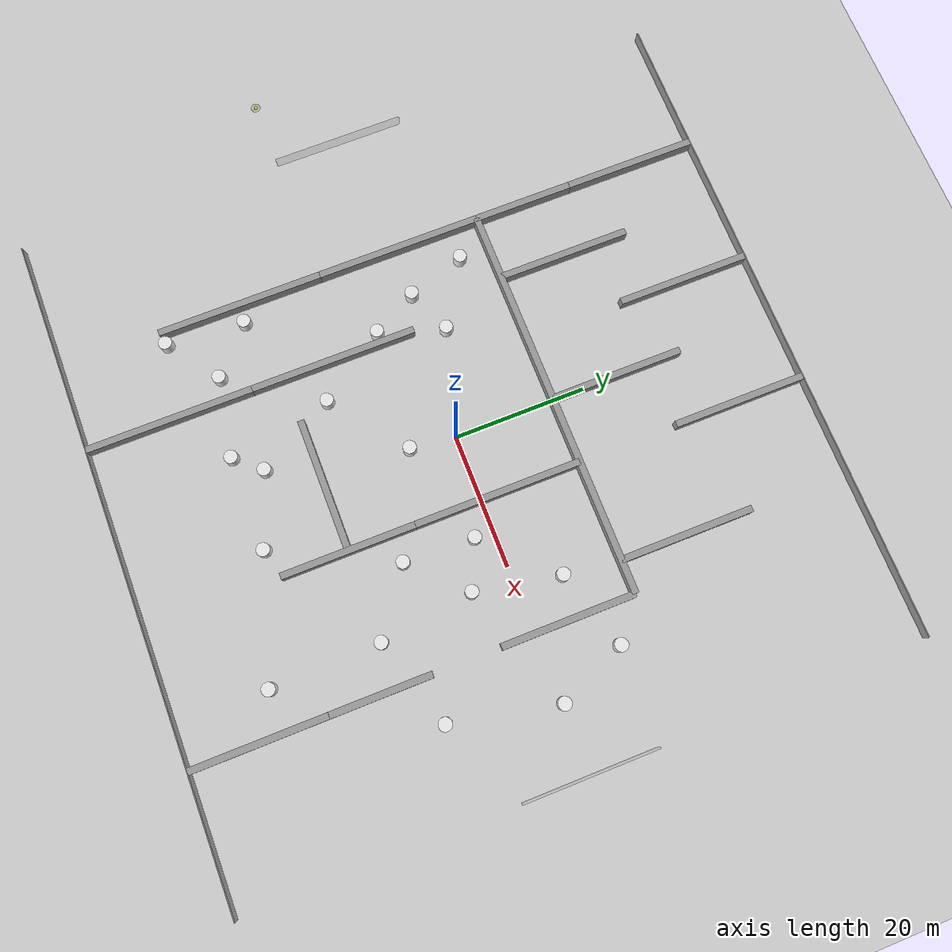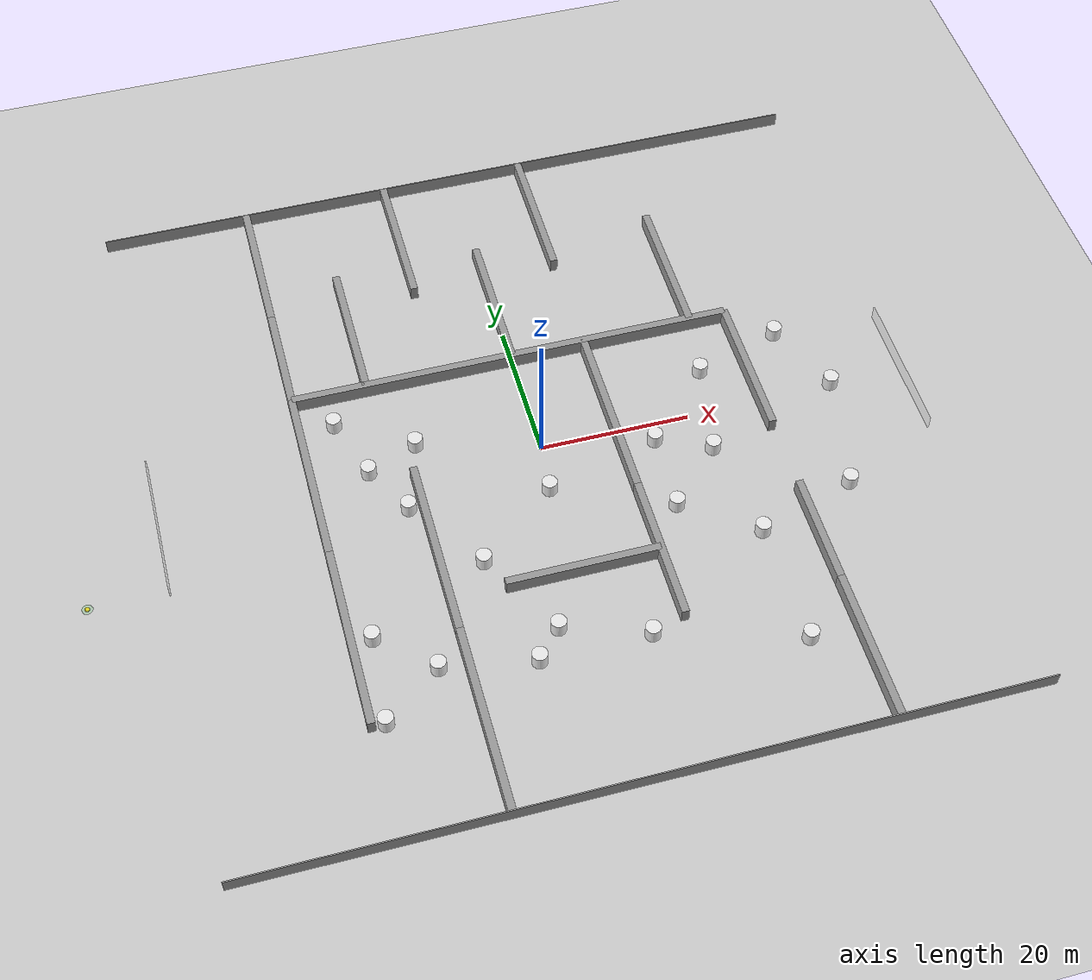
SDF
<?xml version="1.0" ?>
<sdf version="1.5">
  <world name="default">
   <light type="directional" name="sun">
      <cast_shadows>false</cast_shadows>
      <pose>0 0 100 0 0 0</pose>
      <diffuse>0.8 0.8 0.8 1</diffuse>
      <specular>0.9 0.9 0.9 1</specular>
      <attenuation>
        <range>1000</range>
        <constant>0.9</constant>
        <linear>0.01</linear>
        <quadratic>0.001</quadratic>
      </attenuation>
      <direction>0.2 0.2 -0.9</direction>
    </light>

    <!-- A ground plane -->
    <include>
      <uri>model://ground_plane</uri>
    </include>

    <!-- 初始视角 -->
    <gui fullscreen='0'>
      <camera name='user_camera'>
        <pose>-13.0 0.0 12.0 0 0.75 0.0</pose>
        <view_controller>orbit</view_controller>
      </camera>
    </gui>

    <!-- 地面 -->
    <physics type='ode'>
      <gravity>0 0 -9.8066</gravity>
      <ode>
        <solver>
          <type>quick</type>
          <iters>150</iters>
          <sor>1.3</sor>
          <use_dynamic_moi_rescaling>0</use_dynamic_moi_rescaling>
        </solver>
        <constraints>
          <cfm>0.00001</cfm>
          <erp>0.2</erp>
          <contact_max_correcting_vel>1000</contact_max_correcting_vel>
          <contact_surface_layer>0.01</contact_surface_layer>
        </constraints>
      </ode>
      <max_step_size>0.004</max_step_size>
      <real_time_factor>1000.0</real_time_factor>
      <real_time_update_rate>250</real_time_update_rate>
      <magnetic_field>6.0e-6 2.3e-5 -4.2e-5</magnetic_field>
    </physics>

    <model name='start_point'>
      <pose> -60 -10 1 0 0 0 </pose>
      <include>
        <uri>model://start_sphere</uri>
      </include>
    </model>
    <model name='goal_point'>
      <pose> -60 -10 1 0 0 0 </pose>
      <include>
        <uri>model://goal_sphere</uri>
      </include>
    </model>

    <model name='waypoint0'>
      <pose> -60 -10 1 0 0 0 </pose>
      <include>
        <uri>model://waypoint</uri>
      </include>
    </model>
   <model name='waypoint1'>
      <pose> -60 -10 1 0 0 0 </pose>
      <include>
        <uri>model://waypoint</uri>
      </include>
    </model>
    <model name='waypoint2'>
      <pose> -60 -10 1 0 0 0 </pose>
      <include>
        <uri>model://waypoint</uri>
      </include>
    </model>
    <model name='waypoint3'>
      <pose> -60 -10 1 0 0 0 </pose>
      <include>
        <uri>model://waypoint</uri>
      </include>
    </model>
    <model name='waypoint4'>
      <pose> -60 -10 1 0 0 0 </pose>
      <include>
        <uri>model://waypoint</uri>
      </include>
    </model>
    <model name='waypoint5'>
      <pose> -60 -10 1 0 0 0 </pose>
      <include>
        <uri>model://waypoint</uri>
      </include>
    </model>
    <model name='waypoint6'>
      <pose> -60 -10 1 0 0 0 </pose>
      <include>
        <uri>model://waypoint</uri>
      </include>
    </model>
    <model name='waypoint7'>
      <pose> -60 -10 1 0 0 0 </pose>
      <include>
        <uri>model://waypoint</uri>
      </include>
    </model>
    <model name='waypoint8'>
      <pose> -60 -10 1 0 0 0 </pose>
      <include>
        <uri>model://waypoint</uri>
      </include>
    </model>
    <model name='waypoint9'>
      <pose> -60 -10 1 0 0 0 </pose>
      <include>
        <uri>model://waypoint</uri>
      </include>
    </model>
    <model name='waypoint10'>
      <pose> -60 -10 1 0 0 0 </pose>
      <include>
        <uri>model://waypoint</uri>
      </include>
    </model>
    <model name='waypoint11'>
      <pose> -60 -10 1 0 0 0 </pose>
      <include>
        <uri>model://waypoint</uri>
      </include>
    </model>
    <model name='waypoint12'>
      <pose> -60 -10 1 0 0 0 </pose>
      <include>
        <uri>model://waypoint</uri>
      </include>
    </model>
    <model name='waypoint13'>
      <pose> -60 -10 1 0 0 0 </pose>
      <include>
        <uri>model://waypoint</uri>
      </include>
    </model>
    <model name='waypoint14'>
      <pose> -60 -10 1 0 0 0 </pose>
      <include>
        <uri>model://waypoint</uri>
      </include>
    </model>
    <model name='waypoint15'>
      <pose> -60 -10 1 0 0 0 </pose>
      <include>
        <uri>model://waypoint</uri>
      </include>
    </model>
    <model name='waypoint16'>
      <pose> -60 -10 1 0 0 0 </pose>
      <include>
        <uri>model://waypoint</uri>
      </include>
    </model>
    <model name='waypoint17'>
      <pose> -60 -10 1 0 0 0 </pose>
      <include>
        <uri>model://waypoint</uri>
      </include>
    </model>
    <model name='waypoint18'>
      <pose> -60 -10 1 0 0 0 </pose>
      <include>
        <uri>model://waypoint</uri>
      </include>
    </model>
    <model name='waypoint19'>
      <pose> -60 -10 1 0 0 0 </pose>
      <include>
        <uri>model://waypoint</uri>
      </include>
    </model>
    <model name='waypoint20'>
      <pose> -60 -10 1 0 0 0 </pose>
      <include>
        <uri>model://waypoint</uri>
      </include>
    </model>

    <model name='wall1'>
      <pose> 0 -50 1 0 0 0 </pose>
      <include>
        <uri>model://env2/obs_wall</uri>
      </include>
    </model>
    <model name='wall2'>
      <pose> 0 50 1 0 0 0 </pose>
      <include>
        <uri>model://env2/obs_wall</uri>
      </include>
    </model>
    <model name='wall3'>
      <pose> -50 0 1 0 0 0 </pose>
      <include>
        <uri>model://env2/obs_wall_x</uri>
      </include>
    </model>
    <model name='wall4'>
      <pose> 50 0 1 0 0 0 </pose>
      <include>
        <uri>model://env2/obs_wall_x</uri>
      </include>
    </model>

    <model name='wall5'>
      <pose> -30 -22.5 1 0 0 0 </pose>
      <include>
        <uri>model://env2/obs_wall_h_25m</uri>
      </include>
    </model>
    <model name='wall6'>
      <pose> -30 2.5 1 0 0 0 </pose>
      <include>
        <uri>model://env2/obs_wall_h_25m</uri>
      </include>
    </model>
    <model name='wall7'>
      <pose> -17 -37.5 1 0 0 0 </pose>
      <include>
        <uri>model://env2/obs_wall_h_25m</uri>
      </include>
    </model>
    <model name='wall8'>
      <pose> -17 -12.5 1 0 0 0 </pose>
      <include>
        <uri>model://env2/obs_wall_h_25m</uri>
      </include>
    </model>
    <model name='wall9'>
      <pose> -10 40 1 0 0 0 </pose>
      <include>
        <uri>model://env2/obs_wall_h_20m</uri>
      </include>
    </model>
    <model name='wall10'>
      <pose> -20 25 1 0 0 0 </pose>
      <include>
        <uri>model://env2/obs_wall_h_20m</uri>
      </include>
    </model>
    <model name='wall10-1'>
      <pose> 0 25 1 0 0 0 </pose>
      <include>
        <uri>model://env2/obs_wall_h_20m</uri>
      </include>
    </model>
    <model name='wall10-2'>
      <pose> -30 40 1 0 0 0 </pose>
      <include>
        <uri>model://env2/obs_wall_h_20m</uri>
      </include>
    </model>
    <model name='wall10-3'>
      <pose> 10 40 1 0 0 0 </pose>
      <include>
        <uri>model://env2/obs_wall_h_20m</uri>
      </include>
    </model>
    <model name='wall10-4'>
      <pose> -30 22.5 1 0 0 0 </pose>
      <include>
        <uri>model://env2/obs_wall_h_15m</uri>
      </include>
    </model>
    <model name='wall11'>
      <pose> 10 -20 1 0 0 0 </pose>
      <include>
        <uri>model://env2/obs_wall_h_20m</uri>
      </include>
    </model>
    <model name='wall12'>
      <pose> 10 2.5 1 0 0 0 </pose>
      <include>
        <uri>model://env2/obs_wall_h_25m</uri>
      </include>
    </model>
    <model name='wall13'>
      <pose> 30 -22.5 1 0 0 0 </pose>
      <include>
        <uri>model://env2/obs_wall_h_15m</uri>
      </include>
    </model>
    <model name='wall14'>
      <pose> 30 -40 1 0 0 0 </pose>
      <include>
        <uri>model://env2/obs_wall_h_20m</uri>
      </include>
    </model>
    <model name='wall15'>
      <pose> 30 5 1 0 0 0 </pose>
      <include>
        <uri>model://env2/obs_wall_h_20m</uri>
      </include>
    </model>
    <model name='wall16'>
      <pose> 25 25 1 0 0 0 </pose>
      <include>
        <uri>model://env2/obs_wall_h_20m</uri>
      </include>
    </model>
    <model name='wall17'>
      <pose> 0 -20 1 0 0 0 </pose>
      <include>
        <uri>model://env2/obs_wall_s_20m</uri>
      </include>
    </model>
    <model name='wall18'>
      <pose> 0 15 1 0 0 0 </pose>
      <include>
        <uri>model://env2/obs_wall_s_60m</uri>
      </include>
    </model>
    <model name='c0'>
      <pose> -28.224168 -34.558850 1 0 0 0 </pose>
      <include>
        <uri>model://env3/obs_cylinder</uri>
      </include>
    </model>
    <model name='c1'>
      <pose> -27.330469 -22.800933 1 0 0 0 </pose>
      <include>
        <uri>model://env3/obs_cylinder</uri>
      </include>
    </model>
    <model name='c2'>
      <pose> -20.561714 -28.873776 1 0 0 0 </pose>
      <include>
        <uri>model://env3/obs_cylinder</uri>
      </include>
    </model>
    <model name='c3'>
      <pose> -25.327954 10.471653 1 0 0 0 </pose>
      <include>
        <uri>model://env3/obs_cylinder</uri>
      </include>
    </model>
    <model name='c4'>
      <pose> -22.526199 1.736325 1 0 0 0 </pose>
      <include>
        <uri>model://env3/obs_cylinder</uri>
      </include>
    </model>
    <model name='c5'>
      <pose> -18.807988 -5.096416 1 0 0 0 </pose>
      <include>
        <uri>model://env3/obs_cylinder</uri>
      </include>
    </model>
    <model name='c6'>
      <pose> -15.729203 4.581480 1 0 0 0 </pose>
      <include>
        <uri>model://env3/obs_cylinder</uri>
      </include>
    </model>
    <model name='c7'>
      <pose> -11.580929 -15.472438 1 0 0 0 </pose>
      <include>
        <uri>model://env3/obs_cylinder</uri>
      </include>
    </model>
    <model name='c8'>
      <pose> -0.720940 -6.795331 1 0 0 0 </pose>
      <include>
        <uri>model://env3/obs_cylinder</uri>
      </include>
    </model>
    <model name='c9'>
      <pose> -8.621024 -31.024675 1 0 0 0 </pose>
      <include>
        <uri>model://env3/obs_cylinder</uri>
      </include>
    </model>
    <model name='c10'>
      <pose> -5.215392 -27.200249 1 0 0 0 </pose>
      <include>
        <uri>model://env3/obs_cylinder</uri>
      </include>
    </model>
    <model name='c11'>
      <pose> 5.574948 -31.001385 1 0 0 0 </pose>
      <include>
        <uri>model://env3/obs_cylinder</uri>
      </include>
    </model>
    <model name='c12'>
      <pose> 14.231700 -13.439801 1 0 0 0 </pose>
      <include>
        <uri>model://env3/obs_cylinder</uri>
      </include>
    </model>
    <model name='c13'>
      <pose> 14.604700 -2.827731 1 0 0 0 </pose>
      <include>
        <uri>model://env3/obs_cylinder</uri>
      </include>
    </model>
    <model name='c14'>
      <pose> 23.804099 -36.480100 1 0 0 0 </pose>
      <include>
        <uri>model://env3/obs_cylinder</uri>
      </include>
    </model>
    <model name='c15'>
      <pose> 23.455576 -20.093567 1 0 0 0 </pose>
      <include>
        <uri>model://env3/obs_cylinder</uri>
      </include>
    </model>
    <model name='c16'>
      <pose> 21.534200 -5.994700 1 0 0 0 </pose>
      <include>
        <uri>model://env3/obs_cylinder</uri>
      </include>
    </model>
    <model name='c17'>
      <pose> 23.905300 6.760789 1 0 0 0 </pose>
      <include>
        <uri>model://env3/obs_cylinder</uri>
      </include>
    </model>
    <model name='c18'>
      <pose> 36.738000 -15.814200 1 0 0 0 </pose>
      <include>
        <uri>model://env3/obs_cylinder</uri>
      </include>
    </model>
    <model name='c19'>
      <pose> 40.058910 0.220705 1 0 0 0 </pose>
      <include>
        <uri>model://env3/obs_cylinder</uri>
      </include>
    </model>
    <model name='c20'>
      <pose> 35.658806 10.419316 1 0 0 0 </pose>
      <include>
        <uri>model://env3/obs_cylinder</uri>
      </include>
    </model>

  </world>
</sdf>

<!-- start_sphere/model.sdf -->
<sdf version='1.6'>
  <model name='start_sphere'>
    <link name='link'>
      <inertial>
        <mass>0.1</mass>
        <pose frame=''>0 0 0 0 -0 0</pose>
      </inertial>
      <self_collide>0</self_collide>
      <enable_wind>0</enable_wind>
      <kinematic>0</kinematic>
      <pose frame=''>0 0 0 0 -0 0</pose>
      <gravity>0</gravity>
      <visual name='visual'>
        <geometry>
          <sphere>
            <radius>0.3</radius>
          </sphere>
        </geometry>
        <material>
          <script>
            <name>Gazebo/Yellow</name>
            <uri>file://media/materials/scripts/gazebo.material</uri>
          </script>
          <shader type='pixel'/>
        </material>
        <pose frame=''>0 0 0 0 -0 0</pose>
        <transparency>0</transparency>
        <cast_shadows>1</cast_shadows>
      </visual>
    </link>
    <static>0</static>
    <allow_auto_disable>1</allow_auto_disable>
  </model>
</sdf>

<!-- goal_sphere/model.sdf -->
<sdf version='1.6'>
  <model name='goal_sphere'>
    <link name='link'>
      <inertial>
        <mass>0.1</mass>
        <pose frame=''>0 0 0 0 -0 0</pose>
      </inertial>
      <self_collide>0</self_collide>
      <enable_wind>0</enable_wind>
      <kinematic>0</kinematic>
      <pose frame=''>0 0 0 0 -0 0</pose>
      <gravity>0</gravity>
      <visual name='visual'>
        <geometry>
          <sphere>
            <radius>0.3</radius>
          </sphere>
        </geometry>
        <material>
          <script>
            <name>Gazebo/Green</name>
            <uri>file://media/materials/scripts/gazebo.material</uri>
          </script>
          <shader type='pixel'/>
        </material>
        <pose frame=''>0 0 0 0 -0 0</pose>
        <transparency>0</transparency>
        <cast_shadows>1</cast_shadows>
      </visual>
    </link>
    <static>0</static>
    <allow_auto_disable>1</allow_auto_disable>
  </model>
</sdf>

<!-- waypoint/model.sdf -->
<sdf version='1.6'>
  <model name='waypoint'>
    <link name='link'>
      <inertial>
        <mass>0.1</mass>
        <pose frame=''>0 0 0 0 -0 0</pose>
      </inertial>
      <self_collide>0</self_collide>
      <enable_wind>0</enable_wind>
      <kinematic>0</kinematic>
      <pose frame=''>0 0 0 0 -0 0</pose>
      <gravity>0</gravity>
      <visual name='visual'>
        <geometry>
          <cylinder>
            <radius>0.7</radius>
            <length>0.01</length>
          </cylinder>
        </geometry>
        <material>
          <script>
            <name>Gazebo/Green</name>
            <uri>file://media/materials/scripts/gazebo.material</uri>
          </script>
          <shader type='pixel'/>
        </material>
        <pose frame=''>0 0 0 0 -0 0</pose>
        <transparency>0.8</transparency>
        <cast_shadows>1</cast_shadows>
      </visual>
    </link>
    <static>0</static>
    <allow_auto_disable>1</allow_auto_disable>
  </model>
</sdf>

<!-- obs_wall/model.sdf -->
<sdf version='1.6'>
  <model name="obs_wall">
    <pose frame=''>0 0 0 0 -0 0</pose>
    <static>true</static>
    <link name="wall_link">
        <inertial>
          <mass>100</mass>
        </inertial>
        <collision name="my_collision">
          <geometry>
            <box>
              <!-- 之前设置为30 0.15 2 -->
              <size>100 0.15 2</size>
            </box>
          </geometry>
        </collision>
        <visual name="my_visual">
          <geometry>
            <box>
              <!-- 之前设置为30 0.15 2 -->
              <size>100 0.15 2</size>
            </box>
          </geometry>
          <material>
            <script>
              <uri>file://media/materials/scripts/gazebo.material</uri>
              <name>Gazebo/Gray</name>
            </script>
            <ambient>1 1 1 1</ambient>
          </material>
        </visual>
    </link>
  </model>
</sdf>

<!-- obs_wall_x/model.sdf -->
<sdf version='1.6'>
  <model name="obs_wall_x">
    <pose frame=''>0 0 0 0 -0 0</pose>
    <static>true</static>
    <link name="wall_link">
        <inertial>
          <mass>100</mass>
        </inertial>
        <collision name="my_collision">
          <laser_retro>0</laser_retro>
          <max_contacts>10</max_contacts>
          <pose frame=''>0 0 0 0 -0 0</pose>
          <geometry>
            <box>
              <!-- 之前设置为0.15 20 2 -->
              <size>0.15 20 2</size>
            </box>
          </geometry>
        </collision>
        <visual name="my_visual">
          <geometry>
            <box>
              <!-- 之前设置为0.15 20 2 -->
              <size>0.15 20 2</size>
            </box>
          </geometry>
          <material>
            <script>
              <uri>file://media/materials/scripts/gazebo.material</uri>
              <name>Gazebo/Gray</name>
            </script>
            <ambient>1 1 1 1</ambient>
          </material>
          <transparency>0.8</transparency>
        </visual>
    </link>
  </model>
</sdf>

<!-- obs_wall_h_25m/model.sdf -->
<sdf version='1.6'>
  <model name="obs_wall_env2">
    <pose frame=''>0 0 0 0 -0 0</pose>
    <static>true</static>
    <link name="wall_link">
        <inertial>
          <mass>100</mass>
        </inertial>
        <collision name="my_collision">
          <laser_retro>0</laser_retro>
          <max_contacts>10</max_contacts>
          <pose frame=''>0 0 0 0 -0 0</pose>
          <geometry>
            <box>
              <size>1 25 2</size>
            </box>
          </geometry>
        </collision>
        <visual name="my_visual">
          <geometry>
            <box>
              <size>1 25 2</size>
            </box>
          </geometry>
          <material>
            <script>
              <uri>file://media/materials/scripts/gazebo.material</uri>
              <name>Gazebo/Gray</name>
            </script>
            <ambient>1 1 1 1</ambient>
          </material>
          <transparency>0</transparency>
        </visual>
    </link>
  </model>
</sdf>

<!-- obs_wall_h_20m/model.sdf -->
<sdf version='1.6'>
  <model name="obs_wall_env2">
    <pose frame=''>0 0 0 0 -0 0</pose>
    <static>true</static>
    <link name="wall_link">
        <inertial>
          <mass>100</mass>
        </inertial>
        <collision name="my_collision">
          <laser_retro>0</laser_retro>
          <max_contacts>10</max_contacts>
          <pose frame=''>0 0 0 0 -0 0</pose>
          <geometry>
            <box>
              <size>1 20 2</size>
            </box>
          </geometry>
        </collision>
        <visual name="my_visual">
          <geometry>
            <box>
              <size>1 20 2</size>
            </box>
          </geometry>
          <material>
            <script>
              <uri>file://media/materials/scripts/gazebo.material</uri>
              <name>Gazebo/Gray</name>
            </script>
            <ambient>1 1 1 1</ambient>
          </material>
          <transparency>0</transparency>
        </visual>
    </link>
  </model>
</sdf>

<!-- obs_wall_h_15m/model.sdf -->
<sdf version='1.6'>
  <model name="obs_wall_env2">
    <pose frame=''>0 0 0 0 -0 0</pose>
    <static>true</static>
    <link name="wall_link">
        <inertial>
          <mass>100</mass>
        </inertial>
        <collision name="my_collision">
          <laser_retro>0</laser_retro>
          <max_contacts>10</max_contacts>
          <pose frame=''>0 0 0 0 -0 0</pose>
          <geometry>
            <box>
              <size>1 15 2</size>
            </box>
          </geometry>
        </collision>
        <visual name="my_visual">
          <geometry>
            <box>
              <size>1 15 2</size>
            </box>
          </geometry>
          <material>
            <script>
              <uri>file://media/materials/scripts/gazebo.material</uri>
              <name>Gazebo/Gray</name>
            </script>
            <ambient>1 1 1 1</ambient>
          </material>
          <transparency>0</transparency>
        </visual>
    </link>
  </model>
</sdf>

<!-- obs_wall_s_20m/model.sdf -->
<sdf version='1.6'>
  <model name="obs_wall">
    <pose frame=''>0 0 0 0 -0 0</pose>
    <static>true</static>
    <link name="wall_link">
        <inertial>
          <mass>100</mass>
        </inertial>
        <collision name="my_collision">
          <geometry>
            <box>
              <size>20 1 2</size>
            </box>
          </geometry>
        </collision>
        <visual name="my_visual">
          <geometry>
            <box>
              <size>20 1 2</size>
            </box>
          </geometry>
          <material>
            <script>
              <uri>file://media/materials/scripts/gazebo.material</uri>
              <name>Gazebo/Gray</name>
            </script>
            <ambient>1 1 1 1</ambient>
          </material>
        </visual>
    </link>
  </model>
</sdf>

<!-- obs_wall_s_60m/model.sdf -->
<sdf version='1.6'>
  <model name="obs_wall">
    <pose frame=''>0 0 0 0 -0 0</pose>
    <static>true</static>
    <link name="wall_link">
        <inertial>
          <mass>100</mass>
        </inertial>
        <collision name="my_collision">
          <geometry>
            <box>
              <size>60 1 2</size>
            </box>
          </geometry>
        </collision>
        <visual name="my_visual">
          <geometry>
            <box>
              <size>60 1 2</size>
            </box>
          </geometry>
          <material>
            <script>
              <uri>file://media/materials/scripts/gazebo.material</uri>
              <name>Gazebo/Gray</name>
            </script>
            <ambient>1 1 1 1</ambient>
          </material>
        </visual>
    </link>
  </model>
</sdf>

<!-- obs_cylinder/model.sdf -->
<sdf version='1.6'>
  <model name='obs_cylinder'>
    <link name='link'>
      <inertial>
        <mass>100</mass>
        <pose frame=''>0 0 0 0 -0 0</pose>
      </inertial>
      <self_collide>0</self_collide>
      <enable_wind>0</enable_wind>
      <kinematic>0</kinematic>
      <pose frame=''>0 0 0 0 -0 0</pose>
      <gravity>1</gravity>
      <visual name='visual'>
        <geometry>
          <cylinder>
            <radius>1</radius>
            <length>2</length>
          </cylinder>
        </geometry>
        <material>
          <script>
            <name>Gazebo/White</name>
            <uri>file://media/materials/scripts/gazebo.material</uri>
          </script>
          <shader type='pixel'/>
        </material>
        <pose frame=''>0 0 0 0 -0 0</pose>
        <transparency>0</transparency>
        <cast_shadows>1</cast_shadows>
      </visual>
      <collision name='collision'>
        <laser_retro>0</laser_retro>
        <max_contacts>10</max_contacts>
        <pose frame=''>0 0 0 0 -0 0</pose>
        <geometry>
          <cylinder>
            <radius>1</radius>
            <length>2</length>
          </cylinder>
        </geometry>
      </collision>
    </link>
    <static>0</static>
    <allow_auto_disable>1</allow_auto_disable>
  </model>
</sdf>
